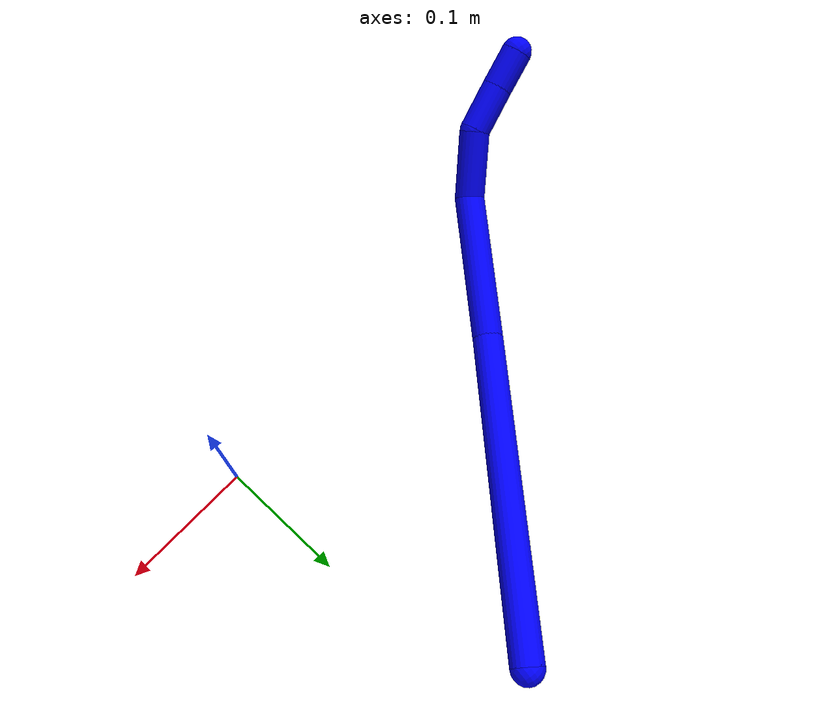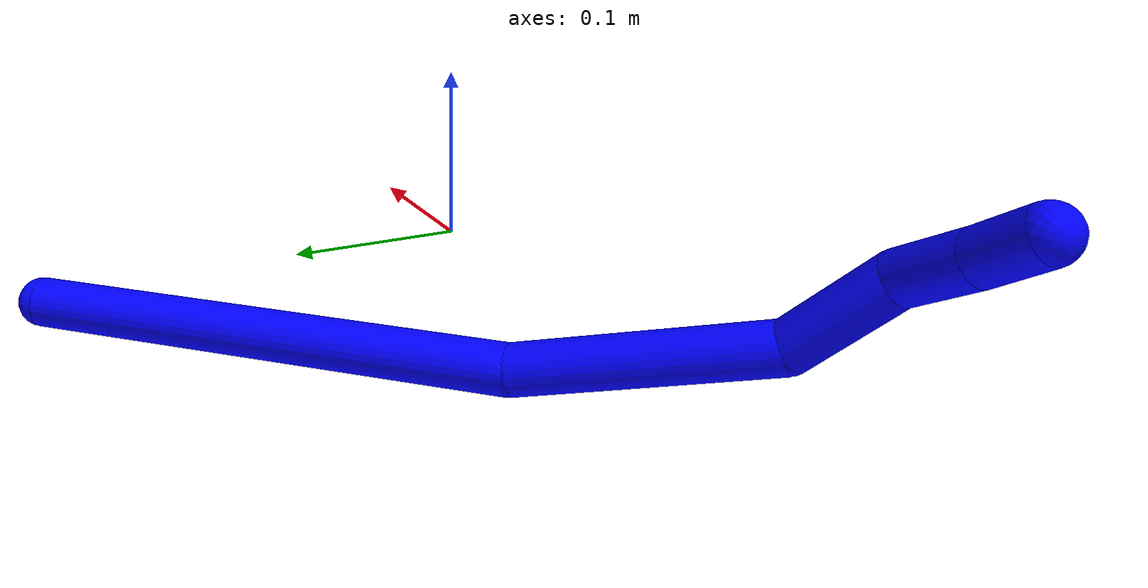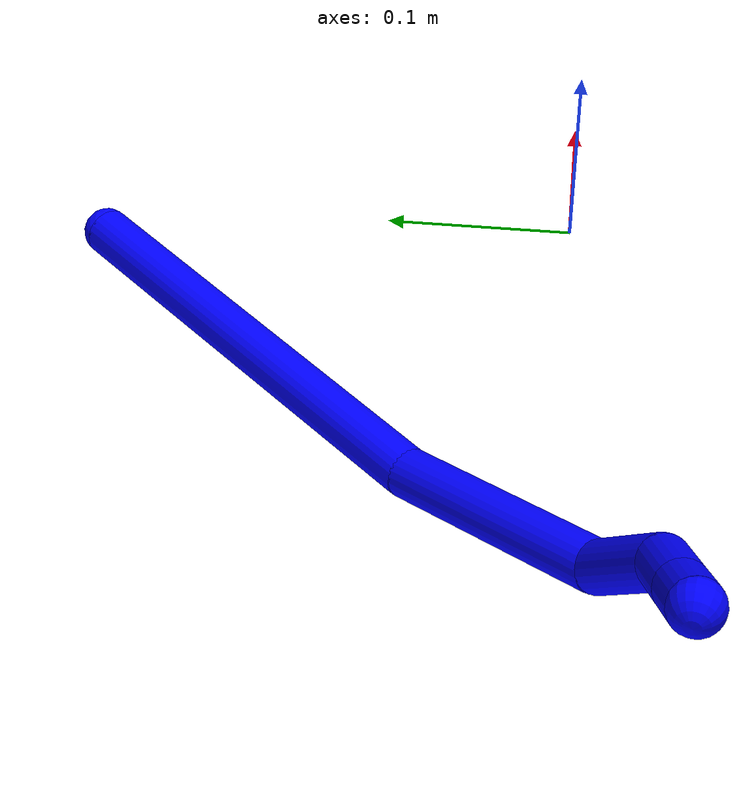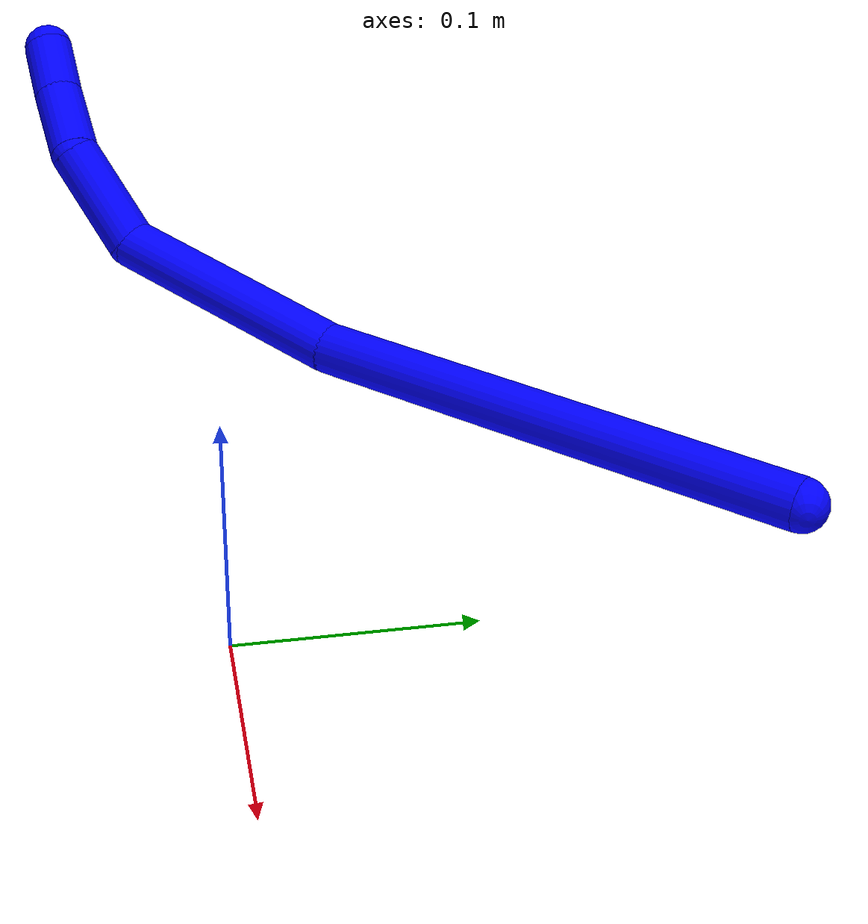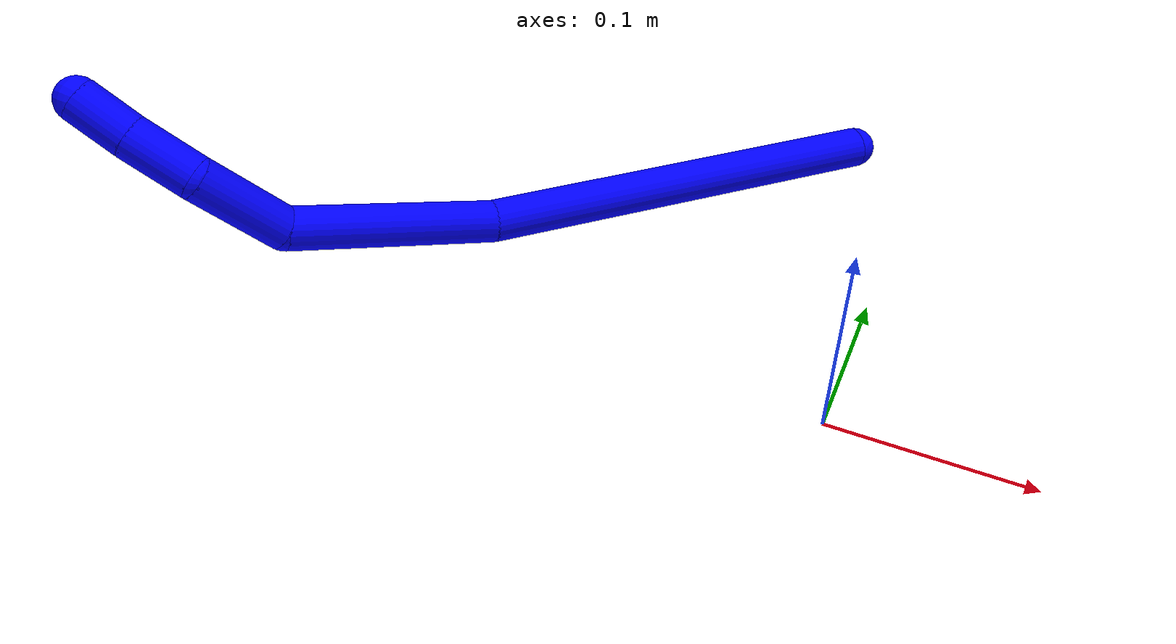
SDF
<sdf version="1.7">
 <world name="default">
  <plugin name="TubeGeneratorPlugin" filename="libtube_generator_plugin.so"/>
  <model name="photoneo_s_sensor">
   <static>1</static>
   <pose>0 0 2 1.57079 1.57079 3.14159</pose>
   <link name="link">
    <inertial><mass>0.1</mass></inertial>
    <sensor name="sensor" type="depth">
     <update_rate>30</update_rate>
     <camera>
      <horizontal_fov>1.22</horizontal_fov>
      <image><width>1920</width><height>1200</height><format>B8G8R8</format></image>
      <clip><near>0.1</near><far>4</far></clip>
      <depth_camera><output>points</output></depth_camera>
     </camera>
     <plugin name="camera_plugin" filename="libgazebo_ros_depth_camera.so">
      <baseline>0.2</baseline>
      <alwaysOn>1</alwaysOn>
      <updateRate>0.0</updateRate>
      <cameraName>camera_ir</cameraName>
      <imageTopicName>/camera/color/image_raw</imageTopicName>
      <cameraInfoTopicName>/camera/color/camera_info</cameraInfoTopicName>
      <depthImageTopicName>/camera/depth/image_raw</depthImageTopicName>
      <depthImageCameraInfoTopicName>/camera/depth/camera_info</depthImageCameraInfoTopicName>
      <pointCloudTopicName>/camera/depth/points</pointCloudTopicName>
      <frameName>fr_optical</frameName>
      <pointCloudCutoff>0.1</pointCloudCutoff>
      <pointCloudCutoffMax>2.0</pointCloudCutoffMax>
      <distortionK1>0</distortionK1>
      <distortionK2>0</distortionK2>
      <distortionK3>0</distortionK3>
      <distortionT1>0</distortionT1>
      <distortionT2>0</distortionT2>
      <CxPrime>0</CxPrime>
      <Cx>0</Cx>
      <Cy>0</Cy>
      <focalLength>0</focalLength>
      <hackBaseline>0</hackBaseline>
     </plugin>
    </sensor>
   </link>
  </model>
  <gravity>0 0 -9.8</gravity>
  <magnetic_field>6e-06 2.3e-05 -4.2e-05</magnetic_field>
  <atmosphere type="adiabatic"/>
  <physics name="default_physics" default="0" type="ode">
   <max_step_size>0.003</max_step_size>
   <real_time_factor>1</real_time_factor>
   <real_time_update_rate>1000</real_time_update_rate>
   <max_contacts>10000</max_contacts>
   <ode>
    <solver>
     <type>quick</type>
     <iters>100</iters>
     <sor>1.3</sor>
     <use_dynamic_moi_rescaling>0</use_dynamic_moi_rescaling>
    </solver>
    <constraints>
     <contact_max_correcting_vel>0</contact_max_correcting_vel>
     <contact_surface_layer>0.001</contact_surface_layer>
     <cfm>0</cfm>
     <erp>0.2</erp>
    </constraints>
   </ode>
  </physics>
  <scene><ambient>0.4 0.4 0.4 1</ambient><background>0.7 0.7 0.7 1</background><shadows>0</shadows></scene>
  <audio><device>default</device></audio>
  <spherical_coordinates>
   <surface_model>EARTH_WGS84</surface_model>
   <latitude_deg>0</latitude_deg>
   <longitude_deg>0</longitude_deg>
   <elevation>0</elevation>
   <heading_deg>0</heading_deg>
  </spherical_coordinates>
  <model name="bin">
   <static>1</static>
   <link name="bottom">
    <collision name="collision-bottom">
     <pose>0 0 -0.01 0 -0 0</pose>
     <geometry><box><size>0.8 0.6 0.02</size></box></geometry>
     <surface>
      <friction><ode><mu>100</mu><mu2>100</mu2></ode></friction>
      <contact><collide_bitmask>65535</collide_bitmask></contact>
     </surface>
    </collision>
   </link>
   <link name="west_wall">
    <collision name="collision-west_wall">
     <pose>-0.41 0 0.1 0 -0 0</pose>
     <geometry><box><size>0.02 0.6 0.2</size></box></geometry>
     <surface>
      <friction><ode><mu>100</mu><mu2>100</mu2></ode></friction>
      <contact><collide_bitmask>65535</collide_bitmask></contact>
     </surface>
    </collision>
   </link>
   <link name="east_wall">
    <collision name="collision-east_wall">
     <pose>0.41 0 0.1 0 -0 0</pose>
     <geometry><box><size>0.02 0.6 0.2</size></box></geometry>
     <surface>
      <friction><ode><mu>100</mu><mu2>100</mu2></ode></friction>
      <contact><collide_bitmask>65535</collide_bitmask></contact>
     </surface>
    </collision>
   </link>
   <link name="south_wall">
    <collision name="collision-south_wall">
     <pose>0 -0.31 0.1 0 -0 0</pose>
     <geometry><box><size>0.8 0.02 0.2</size></box></geometry>
     <surface>
      <friction><ode><mu>100</mu><mu2>100</mu2></ode></friction>
      <contact><collide_bitmask>65535</collide_bitmask></contact>
     </surface>
    </collision>
   </link>
   <link name="north_wall">
    <collision name="collision-north_wall">
     <pose>0 0.31 0.1 0 -0 0</pose>
     <geometry><box><size>0.8 0.02 0.2</size></box></geometry>
     <surface>
      <friction><ode><mu>100</mu><mu2>100</mu2></ode></friction>
      <contact><collide_bitmask>65535</collide_bitmask></contact>
     </surface>
    </collision>
   </link>
  </model>
  <model name="1">
   <static>0</static>
   <link name="1">
    <collision name="collision-cylinder-e_1_1_4">
     <pose>-0.09863 -0.020467 0.073425 0.271843 -0.912842 -0.134101</pose>
     <geometry><cylinder><radius>0.0125</radius><length>0.249304</length></cylinder></geometry>
     <surface>
      <friction><ode><mu>1.16</mu><mu2>1.16</mu2><slip1>0</slip1><slip2>0</slip2></ode></friction>
      <contact><ode><kp>1e+06</kp><kd>1</kd><max_vel>0</max_vel><min_depth>0.001</min_depth></ode></contact>
     </surface>
    </collision>
    <visual name="visual-cylinder-e_1_1_4">
     <pose>-0.09863 -0.020467 0.073425 0.271843 -0.912842 -0.134101</pose>
     <geometry><cylinder><radius>0.0125</radius><length>0.249304</length></cylinder></geometry>
     <material><ambient>0 0 1 1</ambient></material>
    </visual>
    <collision name="collision-cylinder-e_2_4_5">
     <pose>-0.243508 -0.064228 0.180462 0.606051 -0.846761 -0.279942</pose>
     <geometry><cylinder><radius>0.0125</radius><length>0.12347</length></cylinder></geometry>
     <surface>
      <friction><ode><mu>1.16</mu><mu2>1.16</mu2><slip1>0</slip1><slip2>0</slip2></ode></friction>
      <contact><ode><kp>1e+06</kp><kd>1</kd><max_vel>0</max_vel><min_depth>0.001</min_depth></ode></contact>
     </surface>
    </collision>
    <visual name="visual-cylinder-e_2_4_5">
     <pose>-0.243508 -0.064228 0.180462 0.606051 -0.846761 -0.279942</pose>
     <geometry><cylinder><radius>0.0125</radius><length>0.12347</length></cylinder></geometry>
     <material><ambient>0 0 1 1</ambient></material>
    </visual>
    <collision name="collision-cylinder-e_3_5_6">
     <pose>-0.300237 -0.109218 0.228528 0.983071 -0.382257 -0.206438</pose>
     <geometry><cylinder><radius>0.0125</radius><length>0.056197</length></cylinder></geometry>
     <surface>
      <friction><ode><mu>1.16</mu><mu2>1.16</mu2><slip1>0</slip1><slip2>0</slip2></ode></friction>
      <contact><ode><kp>1e+06</kp><kd>1</kd><max_vel>0</max_vel><min_depth>0.001</min_depth></ode></contact>
     </surface>
    </collision>
    <visual name="visual-cylinder-e_3_5_6">
     <pose>-0.300237 -0.109218 0.228528 0.983071 -0.382257 -0.206438</pose>
     <geometry><cylinder><radius>0.0125</radius><length>0.056197</length></cylinder></geometry>
     <material><ambient>0 0 1 1</ambient></material>
    </visual>
    <collision name="collision-cylinder-e_4_6_7">
     <pose>-0.313843 -0.141193 0.259199 0.564976 -0.161323 -0.046917</pose>
     <geometry><cylinder><radius>0.0125</radius><length>0.038904</length></cylinder></geometry>
     <surface>
      <friction><ode><mu>1.16</mu><mu2>1.16</mu2><slip1>0</slip1><slip2>0</slip2></ode></friction>
      <contact><ode><kp>1e+06</kp><kd>1</kd><max_vel>0</max_vel><min_depth>0.001</min_depth></ode></contact>
     </surface>
    </collision>
    <visual name="visual-cylinder-e_4_6_7">
     <pose>-0.313843 -0.141193 0.259199 0.564976 -0.161323 -0.046917</pose>
     <geometry><cylinder><radius>0.0125</radius><length>0.038904</length></cylinder></geometry>
     <material><ambient>0 0 1 1</ambient></material>
    </visual>
    <collision name="collision-cylinder-e_5_7_2">
     <pose>-0.318755 -0.160515 0.28857 0.602206 -0.111502 -0.034659</pose>
     <geometry><cylinder><radius>0.0125</radius><length>0.032125</length></cylinder></geometry>
     <surface>
      <friction><ode><mu>1.16</mu><mu2>1.16</mu2><slip1>0</slip1><slip2>0</slip2></ode></friction>
      <contact><ode><kp>1e+06</kp><kd>1</kd><max_vel>0</max_vel><min_depth>0.001</min_depth></ode></contact>
     </surface>
    </collision>
    <visual name="visual-cylinder-e_5_7_2">
     <pose>-0.318755 -0.160515 0.28857 0.602206 -0.111502 -0.034659</pose>
     <geometry><cylinder><radius>0.0125</radius><length>0.032125</length></cylinder></geometry>
     <material><ambient>0 0 1 1</ambient></material>
    </visual>
    <collision name="collision-sphere-2">
     <pose>-0.320542 -0.169557 0.301725 0 -0 0</pose>
     <geometry><sphere><radius>0.0125</radius></sphere></geometry>
     <surface>
      <friction><ode><mu>1.16</mu><mu2>1.16</mu2><slip1>0</slip1><slip2>0</slip2></ode></friction>
      <contact><ode><kp>1e+06</kp><kd>1</kd><max_vel>0</max_vel><min_depth>0.001</min_depth></ode></contact>
     </surface>
    </collision>
    <visual name="visual-sphere-2">
     <pose>-0.320542 -0.169557 0.301725 0 -0 0</pose>
     <geometry><sphere><radius>0.0125</radius></sphere></geometry>
     <material><ambient>0 0 1 1</ambient></material>
    </visual>
    <collision name="collision-sphere-7">
     <pose>-0.316968 -0.151473 0.275415 0 -0 0</pose>
     <geometry><sphere><radius>0.0125</radius></sphere></geometry>
     <surface>
      <friction><ode><mu>1.16</mu><mu2>1.16</mu2><slip1>0</slip1><slip2>0</slip2></ode></friction>
      <contact><ode><kp>1e+06</kp><kd>1</kd><max_vel>0</max_vel><min_depth>0.001</min_depth></ode></contact>
     </surface>
    </collision>
    <visual name="visual-sphere-7">
     <pose>-0.316968 -0.151473 0.275415 0 -0 0</pose>
     <geometry><sphere><radius>0.0125</radius></sphere></geometry>
     <material><ambient>0 0 1 1</ambient></material>
    </visual>
    <collision name="collision-sphere-6">
     <pose>-0.310719 -0.130914 0.242983 0 -0 0</pose>
     <geometry><sphere><radius>0.0125</radius></sphere></geometry>
     <surface>
      <friction><ode><mu>1.16</mu><mu2>1.16</mu2><slip1>0</slip1><slip2>0</slip2></ode></friction>
      <contact><ode><kp>1e+06</kp><kd>1</kd><max_vel>0</max_vel><min_depth>0.001</min_depth></ode></contact>
     </surface>
    </collision>
    <visual name="visual-sphere-6">
     <pose>-0.310719 -0.130914 0.242983 0 -0 0</pose>
     <geometry><sphere><radius>0.0125</radius></sphere></geometry>
     <material><ambient>0 0 1 1</ambient></material>
    </visual>
    <collision name="collision-sphere-5">
     <pose>-0.289756 -0.087522 0.214073 0 -0 0</pose>
     <geometry><sphere><radius>0.0125</radius></sphere></geometry>
     <surface>
      <friction><ode><mu>1.16</mu><mu2>1.16</mu2><slip1>0</slip1><slip2>0</slip2></ode></friction>
      <contact><ode><kp>1e+06</kp><kd>1</kd><max_vel>0</max_vel><min_depth>0.001</min_depth></ode></contact>
     </surface>
    </collision>
    <visual name="visual-sphere-5">
     <pose>-0.289756 -0.087522 0.214073 0 -0 0</pose>
     <geometry><sphere><radius>0.0125</radius></sphere></geometry>
     <material><ambient>0 0 1 1</ambient></material>
    </visual>
    <collision name="collision-sphere-1">
     <geometry><sphere><radius>0.0125</radius></sphere></geometry>
     <surface>
      <friction><ode><mu>1.16</mu><mu2>1.16</mu2><slip1>0</slip1><slip2>0</slip2></ode></friction>
      <contact><ode><kp>1e+06</kp><kd>1</kd><max_vel>0</max_vel><min_depth>0.001</min_depth></ode></contact>
     </surface>
    </collision>
    <visual name="visual-sphere-1">
     <geometry><sphere><radius>0.0125</radius></sphere></geometry>
     <material><ambient>0 0 1 1</ambient></material>
    </visual>
    <collision name="collision-sphere-4">
     <pose>-0.19726 -0.040934 0.146851 0 -0 0</pose>
     <geometry><sphere><radius>0.0125</radius></sphere></geometry>
     <surface>
      <friction><ode><mu>1.16</mu><mu2>1.16</mu2><slip1>0</slip1><slip2>0</slip2></ode></friction>
      <contact><ode><kp>1e+06</kp><kd>1</kd><max_vel>0</max_vel><min_depth>0.001</min_depth></ode></contact>
     </surface>
    </collision>
    <visual name="visual-sphere-4">
     <pose>-0.19726 -0.040934 0.146851 0 -0 0</pose>
     <geometry><sphere><radius>0.0125</radius></sphere></geometry>
     <material><ambient>0 0 1 1</ambient></material>
    </visual>
    <inertial>
     <pose>-0.187954 -0.05964 0.145567 0 -0 0</pose>
     <mass>0.5</mass>
     <inertia>
      <ixx>0.000752</ixx>
      <ixy>0</ixy>
      <ixz>0</ixz>
      <iyy>0.001292</iyy>
      <iyz>0</iyz>
      <izz>0.001475</izz>
     </inertia>
    </inertial>
   </link>
   <pose>-0.04268 0.249163 0.011765 -1.55649 -0.213923 1.42883</pose>
  </model>
 </world>
</sdf>
